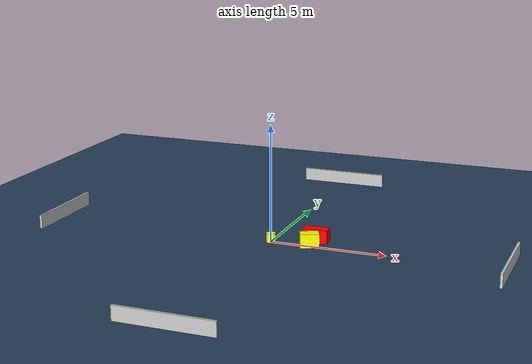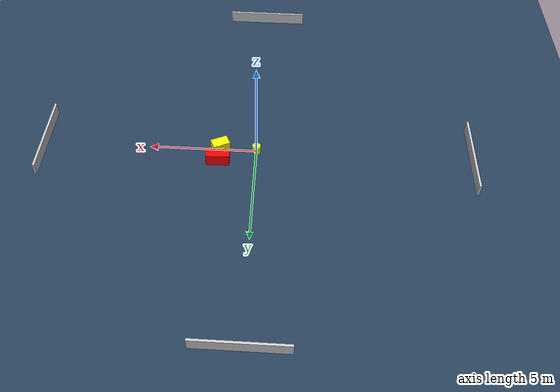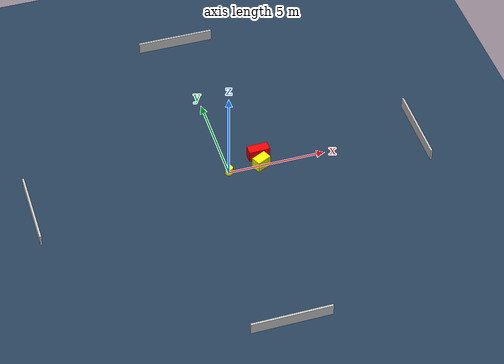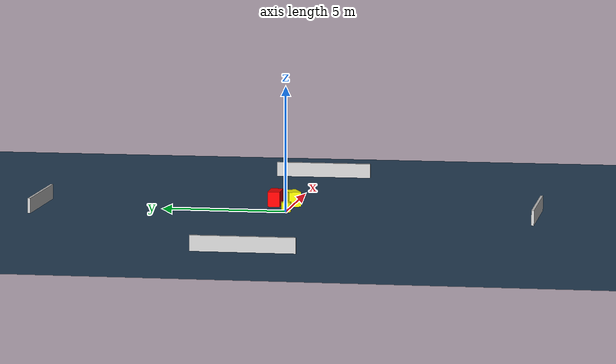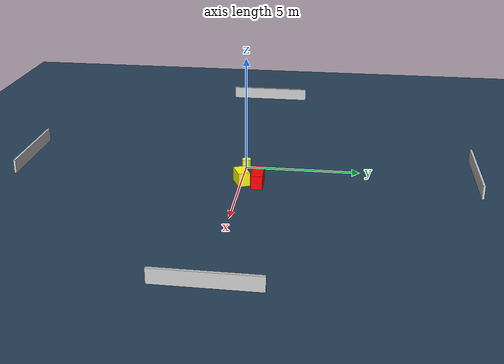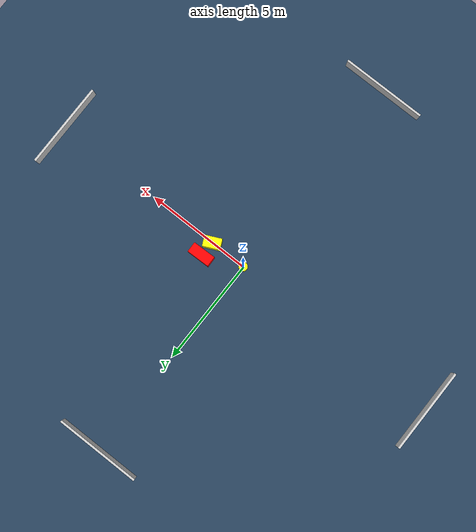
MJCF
<?xml version="1.0" ?>
<mujoco model="generated_environment">
  <option timestep="0.01" integrator="RK4" cone="elliptic"/>
  <default>
    <geom density="1"/>
  </default>
  <asset>
    <texture builtin="gradient" height="3072" name="skybox" rgb1="0.3 0.5 0.7" rgb2="0 0 0" type="skybox" width="512"/>
    <texture builtin="checker" height="300" name="groundplane" rgb1="0.2 0.3 0.4" rgb2="0.1 0.2 0.3" type="2d" width="300"/>
    <material name="groundplane" reflectance="0.2" texrepeat="5 5" texture="groundplane"/>
  </asset>
  <worldbody>
    <light dir="0 0 -1" directional="true" pos="0 0 1.5"/>
    <geom condim="3" friction="0.5 0.005 0.001" material="groundplane" name="floor" pos="0 0 0" size="0 0 0.05" type="plane"/>
    <body name="walls">
      <geom name="wall_1" condim="4" pos="-10.0 0.0 0.3" rgba="0.800000011920929 0.800000011920929 0.800000011920929 1.0" size="0.05 2.0 0.3" type="box"/>
      <geom name="wall_2" condim="4" pos="10.0 0.0 0.3" rgba="0.800000011920929 0.800000011920929 0.800000011920929 1.0" size="0.05 2.0 0.3" type="box"/>
      <geom name="wall_3" condim="4" pos="0.0 -10.0 0.3" rgba="0.800000011920929 0.800000011920929 0.800000011920929 1.0" size="2.0 0.05 0.3" type="box"/>
      <geom name="wall_4" condim="4" pos="0.0 10.0 0.3" rgba="0.800000011920929 0.800000011920929 0.800000011920929 1.0" size="2.0 0.05 0.3" type="box"/>
    </body>
    <body name="robot">
      <joint name="joint_x" type="slide" pos="0 0 0" axis="1 0 0"/>
      <joint name="joint_y" type="slide" pos="0 0 0" axis="0 1 0"/>
      <geom name="robot" type="cylinder" pos="0.0 0.0 0.2" size="0.2 0.2 0.0" mass="5.0" friction="1.0 0.005 0.0001" condim="4" rgba="1.0 1.0 0.0 1.0"/>
    </body>
    <body name="obstacle_1_movable">
      <geom name="obstacle_1_movable" condim="4" pos="1.6960417981532252 0.015110537402063601 0.3" euler="0 0 205.0779039534158" friction="0.0 0.005 0.001" rgba="1.0 1.0 0.0 1.0" size="0.39850651332259496 0.25246166633755845 0.3" type="box" mass="0.1"/>
      <joint type="free"/>
    </body>
    <body name="obstacle_2_static">
      <geom name="obstacle_2_static" condim="4" pos="1.7543881585925656 0.7181452960444059 0.3" euler="0 0 91.39556340000611" friction="0.0 0.005 0.001" rgba="1.0 0.0 0.0 1.0" size="0.24609414340563046 0.5388200821488753 0.3" type="box"/>
    </body>
  </worldbody>
  <actuator>
    <motor name="actuator_x" joint="joint_x" gear="1" ctrlrange="-1 1"/>
    <motor name="actuator_y" joint="joint_y" gear="1" ctrlrange="-1 1"/>
  </actuator>
</mujoco>
